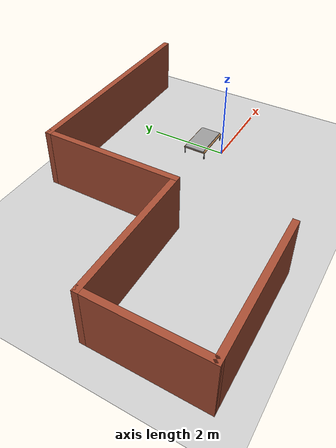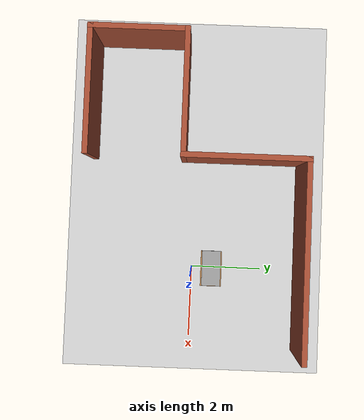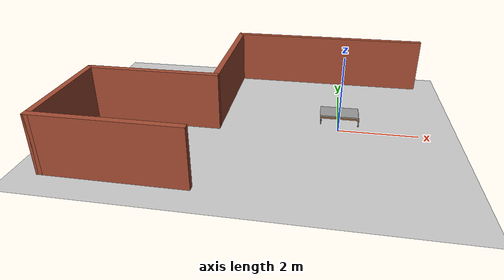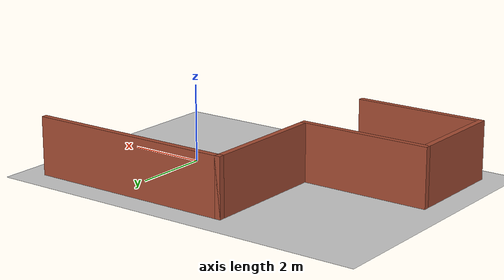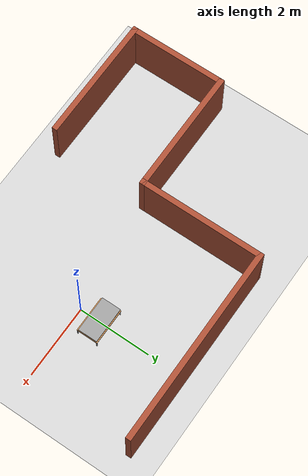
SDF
<sdf version="1.7">
 <world name="default">
  <light name="sun" type="directional">
   <pose>0 0 10 0 -0 0</pose>
   <diffuse>0.8 0.8 0.8 1</diffuse>
   <specular>0.2 0.2 0.2 1</specular>
   <attenuation>
    <range>1000</range>
    <constant>0.9</constant>
    <linear>0.01</linear>
    <quadratic>0.001</quadratic>
   </attenuation>
   <direction>-0.5 0.1 -0.9</direction>
   <spot><inner_angle>0</inner_angle><outer_angle>0</outer_angle><falloff>0</falloff></spot>
  </light>
  <model name="ground_plane">
   <static>1</static>
   <link name="link">
    <collision name="collision">
     <geometry><plane><normal>0 0 1</normal><size>100 100</size></plane></geometry>
     <surface>
      <contact><collide_bitmask>65535</collide_bitmask></contact>
      <friction><ode><mu>100</mu><mu2>50</mu2></ode></friction>
     </surface>
    </collision>
    <visual name="visual">
     <cast_shadows>0</cast_shadows>
     <geometry><plane><normal>0 0 1</normal><size>100 100</size></plane></geometry>
     <material>
      <script><uri>file://media/materials/scripts/gazebo.material</uri><name>Gazebo/Grey</name></script>
     </material>
    </visual>
   </link>
  </model>
  <gravity>0 0 -9.8</gravity>
  <magnetic_field>6e-06 2.3e-05 -4.2e-05</magnetic_field>
  <atmosphere type="adiabatic"/>
  <physics type="ode">
   <max_step_size>0.001</max_step_size>
   <real_time_factor>1</real_time_factor>
   <real_time_update_rate>1000</real_time_update_rate>
  </physics>
  <scene><ambient>0.4 0.4 0.4 1</ambient><background>0.7 0.7 0.7 1</background><shadows>1</shadows></scene>
  <spherical_coordinates>
   <surface_model>EARTH_WGS84</surface_model>
   <latitude_deg>0</latitude_deg>
   <longitude_deg>0</longitude_deg>
   <elevation>0</elevation>
   <heading_deg>0</heading_deg>
  </spherical_coordinates>
  <model name="base_puerta">
   <link name="link">
    <inertial>
     <mass>1</mass>
     <inertia>
      <ixx>0.166667</ixx>
      <ixy>0</ixy>
      <ixz>0</ixz>
      <iyy>0.166667</iyy>
      <iyz>0</iyz>
      <izz>0.166667</izz>
     </inertia>
    </inertial>
    <visual name="visual">
     <geometry><box><size>0.997486 0.533235 0.034949</size></box></geometry>
     <material>
      <script><name>Gazebo/Grey</name><uri>file://media/materials/scripts/gazebo.material</uri></script>
      <shader type="pixel"><normal_map>__default__</normal_map></shader>
     </material>
    </visual>
    <collision name="collision">
     <geometry><box><size>0.997486 0.533235 0.034949</size></box></geometry>
     <surface>
      <friction>
       <ode><mu>1</mu><mu2>1</mu2><fdir1>0 0 0</fdir1><slip1>0</slip1><slip2>0</slip2></ode>
       <torsional>
        <coefficient>1</coefficient>
        <patch_radius>0</patch_radius>
        <surface_radius>0</surface_radius>
        <use_patch_radius>1</use_patch_radius>
        <ode><slip>0</slip></ode>
       </torsional>
      </friction>
      <bounce><restitution_coefficient>0</restitution_coefficient><threshold>1e+06</threshold></bounce>
      <contact>
       <collide_without_contact>0</collide_without_contact>
       <collide_without_contact_bitmask>1</collide_without_contact_bitmask>
       <collide_bitmask>1</collide_bitmask>
       <ode>
        <soft_cfm>0</soft_cfm>
        <soft_erp>0.2</soft_erp>
        <kp>1e+13</kp>
        <kd>1</kd>
        <max_vel>0.01</max_vel>
        <min_depth>0</min_depth>
       </ode>
       <bullet>
        <split_impulse>1</split_impulse>
        <split_impulse_penetration_threshold>-0.01</split_impulse_penetration_threshold>
        <soft_cfm>0</soft_cfm>
        <soft_erp>0.2</soft_erp>
        <kp>1e+13</kp>
        <kd>1</kd>
       </bullet>
      </contact>
     </surface>
    </collision>
   </link>
   <static>0</static>
   <pose>0.010125 0.575756 0.23239 -5.1e-05 -6e-06 -8e-06</pose>
  </model>
  <model name="table_socromatica2">
   <link name="link">
    <inertial>
     <mass>1</mass>
     <inertia><ixx>1</ixx><ixy>0</ixy><ixz>0</ixz><iyy>1</iyy><iyz>0</iyz><izz>1</izz></inertia>
    </inertial>
    <visual name="visual1">
     <pose>0 0 0.2 0 -0 0</pose>
     <geometry><box><size>1 0.6 0.03</size></box></geometry>
     <material>
      <script><uri>file://media/materials/scripts/gazebo.material</uri><name>Gazebo/Wood</name></script>
      <shader type="pixel"><normal_map>__default__</normal_map></shader>
      <ambient>1 1 1 1</ambient>
      <diffuse>1 1 1 1</diffuse>
      <specular>0.2 0.2 0.2 1</specular>
      <emissive>0 0 0 1</emissive>
     </material>
    </visual>
    <visual name="front_right_leg">
     <pose>0.49 -0.28 0.1 0 -0 0</pose>
     <geometry><cylinder><radius>0.015</radius><length>0.2</length></cylinder></geometry>
     <material>
      <script><uri>file://media/materials/scripts/gazebo.material</uri><name>Gazebo/Grey</name></script>
      <shader type="pixel"><normal_map>__default__</normal_map></shader>
      <ambient>0.3 0.3 0.3 1</ambient>
      <diffuse>0.7 0.7 0.7 1</diffuse>
      <specular>0.01 0.01 0.01 1</specular>
      <emissive>0 0 0 1</emissive>
     </material>
    </visual>
    <visual name="back_right_leg">
     <pose>-0.48 -0.28 0.1 0 -0 0</pose>
     <geometry><cylinder><radius>0.015</radius><length>0.2</length></cylinder></geometry>
     <material>
      <script><uri>file://media/materials/scripts/gazebo.material</uri><name>Gazebo/Grey</name></script>
      <shader type="pixel"><normal_map>__default__</normal_map></shader>
      <ambient>0.3 0.3 0.3 1</ambient>
      <diffuse>0.7 0.7 0.7 1</diffuse>
      <specular>0.01 0.01 0.01 1</specular>
      <emissive>0 0 0 1</emissive>
     </material>
    </visual>
    <visual name="back_left_leg">
     <pose>-0.48 0.28 0.1 0 -0 0</pose>
     <geometry><cylinder><radius>0.015</radius><length>0.2</length></cylinder></geometry>
     <material>
      <script><uri>file://media/materials/scripts/gazebo.material</uri><name>Gazebo/Grey</name></script>
      <shader type="pixel"><normal_map>__default__</normal_map></shader>
      <ambient>0.3 0.3 0.3 1</ambient>
      <diffuse>0.7 0.7 0.7 1</diffuse>
      <specular>0.01 0.01 0.01 1</specular>
      <emissive>0 0 0 1</emissive>
     </material>
    </visual>
    <visual name="front_left_leg">
     <pose>0.49 0.28 0.1 0 -0 0</pose>
     <geometry><cylinder><radius>0.015</radius><length>0.2</length></cylinder></geometry>
     <material>
      <script><uri>file://media/materials/scripts/gazebo.material</uri><name>Gazebo/Grey</name></script>
      <shader type="pixel"><normal_map>__default__</normal_map></shader>
      <ambient>0.3 0.3 0.3 1</ambient>
      <diffuse>0.7 0.7 0.7 1</diffuse>
      <specular>0.01 0.01 0.01 1</specular>
      <emissive>0 0 0 1</emissive>
     </material>
    </visual>
    <collision name="surface">
     <pose>0 0 0.2 0 -0 0</pose>
     <geometry><box><size>1 0.6 0.03</size></box></geometry>
     <surface>
      <friction>
       <ode><mu>0.6</mu><mu2>0.6</mu2><fdir1>0 0 0</fdir1><slip1>0</slip1><slip2>0</slip2></ode>
       <torsional>
        <coefficient>1</coefficient>
        <patch_radius>0</patch_radius>
        <surface_radius>0</surface_radius>
        <use_patch_radius>1</use_patch_radius>
        <ode><slip>0</slip></ode>
       </torsional>
      </friction>
      <bounce><restitution_coefficient>0</restitution_coefficient><threshold>1e+06</threshold></bounce>
      <contact>
       <collide_without_contact>0</collide_without_contact>
       <collide_without_contact_bitmask>1</collide_without_contact_bitmask>
       <collide_bitmask>1</collide_bitmask>
       <ode>
        <soft_cfm>0</soft_cfm>
        <soft_erp>0.2</soft_erp>
        <kp>1e+13</kp>
        <kd>1</kd>
        <max_vel>0.01</max_vel>
        <min_depth>0</min_depth>
       </ode>
       <bullet>
        <split_impulse>1</split_impulse>
        <split_impulse_penetration_threshold>-0.01</split_impulse_penetration_threshold>
        <soft_cfm>0</soft_cfm>
        <soft_erp>0.2</soft_erp>
        <kp>1e+13</kp>
        <kd>1</kd>
       </bullet>
      </contact>
     </surface>
    </collision>
    <collision name="front_left_leg">
     <pose>0.49 0.28 0.1 0 -0 0</pose>
     <geometry><cylinder><radius>0.015</radius><length>0.2</length></cylinder></geometry>
     <surface>
      <friction>
       <ode><mu>1</mu><mu2>1</mu2><fdir1>0 0 0</fdir1><slip1>0</slip1><slip2>0</slip2></ode>
       <torsional>
        <coefficient>1</coefficient>
        <patch_radius>0</patch_radius>
        <surface_radius>0</surface_radius>
        <use_patch_radius>1</use_patch_radius>
        <ode><slip>0</slip></ode>
       </torsional>
      </friction>
      <bounce><restitution_coefficient>0</restitution_coefficient><threshold>1e+06</threshold></bounce>
      <contact>
       <collide_without_contact>0</collide_without_contact>
       <collide_without_contact_bitmask>1</collide_without_contact_bitmask>
       <collide_bitmask>1</collide_bitmask>
       <ode>
        <soft_cfm>0</soft_cfm>
        <soft_erp>0.2</soft_erp>
        <kp>1e+13</kp>
        <kd>1</kd>
        <max_vel>0.01</max_vel>
        <min_depth>0</min_depth>
       </ode>
       <bullet>
        <split_impulse>1</split_impulse>
        <split_impulse_penetration_threshold>-0.01</split_impulse_penetration_threshold>
        <soft_cfm>0</soft_cfm>
        <soft_erp>0.2</soft_erp>
        <kp>1e+13</kp>
        <kd>1</kd>
       </bullet>
      </contact>
     </surface>
    </collision>
    <collision name="front_right_leg">
     <pose>0.49 -0.28 0.1 0 -0 0</pose>
     <geometry><cylinder><radius>0.015</radius><length>0.2</length></cylinder></geometry>
     <surface>
      <friction>
       <ode><mu>1</mu><mu2>1</mu2><fdir1>0 0 0</fdir1><slip1>0</slip1><slip2>0</slip2></ode>
       <torsional>
        <coefficient>1</coefficient>
        <patch_radius>0</patch_radius>
        <surface_radius>0</surface_radius>
        <use_patch_radius>1</use_patch_radius>
        <ode><slip>0</slip></ode>
       </torsional>
      </friction>
      <bounce><restitution_coefficient>0</restitution_coefficient><threshold>1e+06</threshold></bounce>
      <contact>
       <collide_without_contact>0</collide_without_contact>
       <collide_without_contact_bitmask>1</collide_without_contact_bitmask>
       <collide_bitmask>1</collide_bitmask>
       <ode>
        <soft_cfm>0</soft_cfm>
        <soft_erp>0.2</soft_erp>
        <kp>1e+13</kp>
        <kd>1</kd>
        <max_vel>0.01</max_vel>
        <min_depth>0</min_depth>
       </ode>
       <bullet>
        <split_impulse>1</split_impulse>
        <split_impulse_penetration_threshold>-0.01</split_impulse_penetration_threshold>
        <soft_cfm>0</soft_cfm>
        <soft_erp>0.2</soft_erp>
        <kp>1e+13</kp>
        <kd>1</kd>
       </bullet>
      </contact>
     </surface>
    </collision>
    <collision name="back_right_leg">
     <pose>-0.48 -0.28 0.1 0 -0 0</pose>
     <geometry><cylinder><radius>0.015</radius><length>0.2</length></cylinder></geometry>
     <surface>
      <friction>
       <ode><mu>1</mu><mu2>1</mu2><fdir1>0 0 0</fdir1><slip1>0</slip1><slip2>0</slip2></ode>
       <torsional>
        <coefficient>1</coefficient>
        <patch_radius>0</patch_radius>
        <surface_radius>0</surface_radius>
        <use_patch_radius>1</use_patch_radius>
        <ode><slip>0</slip></ode>
       </torsional>
      </friction>
      <bounce><restitution_coefficient>0</restitution_coefficient><threshold>1e+06</threshold></bounce>
      <contact>
       <collide_without_contact>0</collide_without_contact>
       <collide_without_contact_bitmask>1</collide_without_contact_bitmask>
       <collide_bitmask>1</collide_bitmask>
       <ode>
        <soft_cfm>0</soft_cfm>
        <soft_erp>0.2</soft_erp>
        <kp>1e+13</kp>
        <kd>1</kd>
        <max_vel>0.01</max_vel>
        <min_depth>0</min_depth>
       </ode>
       <bullet>
        <split_impulse>1</split_impulse>
        <split_impulse_penetration_threshold>-0.01</split_impulse_penetration_threshold>
        <soft_cfm>0</soft_cfm>
        <soft_erp>0.2</soft_erp>
        <kp>1e+13</kp>
        <kd>1</kd>
       </bullet>
      </contact>
     </surface>
    </collision>
    <collision name="back_left_leg">
     <pose>-0.48 0.28 0.1 0 -0 0</pose>
     <geometry><cylinder><radius>0.015</radius><length>0.2</length></cylinder></geometry>
     <surface>
      <friction>
       <ode><mu>1</mu><mu2>1</mu2><fdir1>0 0 0</fdir1><slip1>0</slip1><slip2>0</slip2></ode>
       <torsional>
        <coefficient>1</coefficient>
        <patch_radius>0</patch_radius>
        <surface_radius>0</surface_radius>
        <use_patch_radius>1</use_patch_radius>
        <ode><slip>0</slip></ode>
       </torsional>
      </friction>
      <bounce><restitution_coefficient>0</restitution_coefficient><threshold>1e+06</threshold></bounce>
      <contact>
       <collide_without_contact>0</collide_without_contact>
       <collide_without_contact_bitmask>1</collide_without_contact_bitmask>
       <collide_bitmask>1</collide_bitmask>
       <ode>
        <soft_cfm>0</soft_cfm>
        <soft_erp>0.2</soft_erp>
        <kp>1e+13</kp>
        <kd>1</kd>
        <max_vel>0.01</max_vel>
        <min_depth>0</min_depth>
       </ode>
       <bullet>
        <split_impulse>1</split_impulse>
        <split_impulse_penetration_threshold>-0.01</split_impulse_penetration_threshold>
        <soft_cfm>0</soft_cfm>
        <soft_erp>0.2</soft_erp>
        <kp>1e+13</kp>
        <kd>1</kd>
       </bullet>
      </contact>
     </surface>
    </collision>
   </link>
   <static>1</static>
   <pose>0.024293 0.572605 0 0 -0 0</pose>
  </model>
  <model name="Paredes">
   <pose>-2.11 0.065 0 0 -0 0</pose>
   <link name="Wall_10">
    <collision name="Wall_10_Collision">
     <geometry><box><size>3.5 0.15 1.5</size></box></geometry>
     <pose>0 0 0.75 0 -0 0</pose>
    </collision>
    <visual name="Wall_10_Visual">
     <pose>0 0 0.75 0 -0 0</pose>
     <geometry><box><size>3.5 0.15 1.5</size></box></geometry>
     <material>
      <script><uri>file://media/materials/scripts/gazebo.material</uri><name>Gazebo/Bricks</name></script>
      <ambient>1 1 1 1</ambient>
     </material>
     <meta><layer>0</layer></meta>
    </visual>
    <pose>-2.675 -2.975 0 0 -0 0</pose>
   </link>
   <link name="Wall_5">
    <collision name="Wall_5_Collision">
     <geometry><box><size>5.5 0.15 1.5</size></box></geometry>
     <pose>0 0 0.75 0 -0 0</pose>
    </collision>
    <visual name="Wall_5_Visual">
     <pose>0 0 0.75 0 -0 0</pose>
     <geometry><box><size>5.5 0.15 1.5</size></box></geometry>
     <material>
      <script><uri>file://media/materials/scripts/gazebo.material</uri><name>Gazebo/Bricks</name></script>
      <ambient>1 1 1 1</ambient>
     </material>
     <meta><layer>0</layer></meta>
    </visual>
    <pose>1.675 2.975 0 0 -0 0</pose>
   </link>
   <link name="Wall_7">
    <collision name="Wall_7_Collision">
     <geometry><box><size>3.5 0.15 1.5</size></box></geometry>
     <pose>0 0 0.75 0 -0 0</pose>
    </collision>
    <visual name="Wall_7_Visual">
     <pose>0 0 0.75 0 -0 0</pose>
     <geometry><box><size>3.5 0.15 1.5</size></box></geometry>
     <material>
      <script><uri>file://media/materials/scripts/gazebo.material</uri><name>Gazebo/Bricks</name></script>
      <ambient>1 1 1 1</ambient>
     </material>
     <meta><layer>0</layer></meta>
    </visual>
    <pose>-1 1.3 0 0 -0 -1.5708</pose>
   </link>
   <link name="Wall_8">
    <collision name="Wall_8_Collision">
     <geometry><box><size>3.5 0.15 1.5</size></box></geometry>
     <pose>0 0 0.75 0 -0 0</pose>
    </collision>
    <visual name="Wall_8_Visual">
     <pose>0 0 0.75 0 -0 0</pose>
     <geometry><box><size>3.5 0.15 1.5</size></box></geometry>
     <material>
      <script><uri>file://media/materials/scripts/gazebo.material</uri><name>Gazebo/Bricks</name></script>
      <ambient>1 1 1 1</ambient>
     </material>
     <meta><layer>0</layer></meta>
    </visual>
    <pose>-2.675 -0.375 0 0 -0 3.14159</pose>
   </link>
   <link name="Wall_9">
    <collision name="Wall_9_Collision">
     <geometry><box><size>2.75 0.15 1.5</size></box></geometry>
     <pose>0 0 0.75 0 -0 0</pose>
    </collision>
    <visual name="Wall_9_Visual">
     <pose>0 0 0.75 0 -0 0</pose>
     <geometry><box><size>2.75 0.15 1.5</size></box></geometry>
     <material>
      <script><uri>file://media/materials/scripts/gazebo.material</uri><name>Gazebo/Bricks</name></script>
      <ambient>1 1 1 1</ambient>
     </material>
     <meta><layer>0</layer></meta>
    </visual>
    <pose>-4.35 -1.675 0 0 -0 -1.5708</pose>
   </link>
   <static>1</static>
  </model>
 </world>
</sdf>
